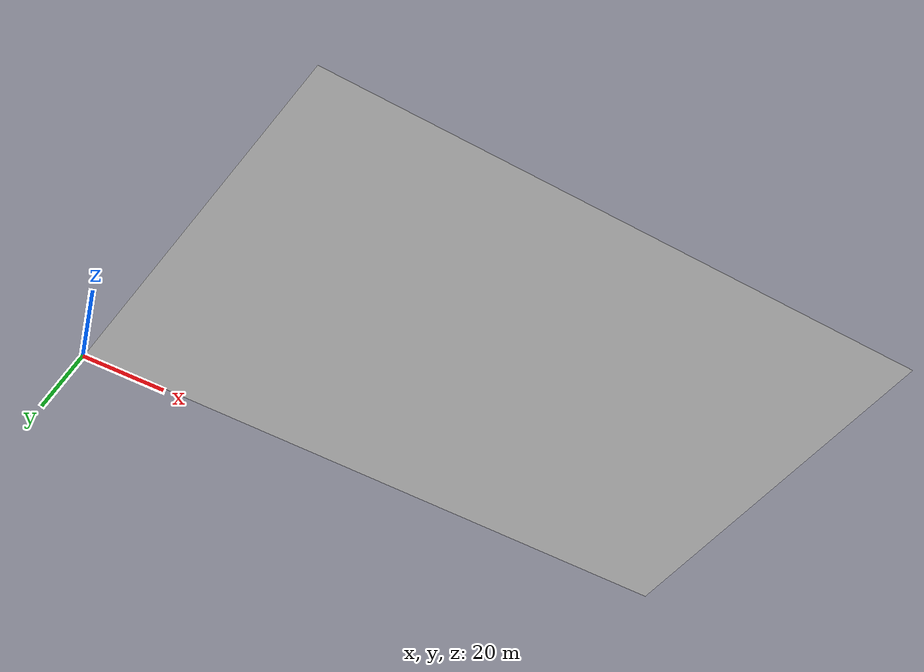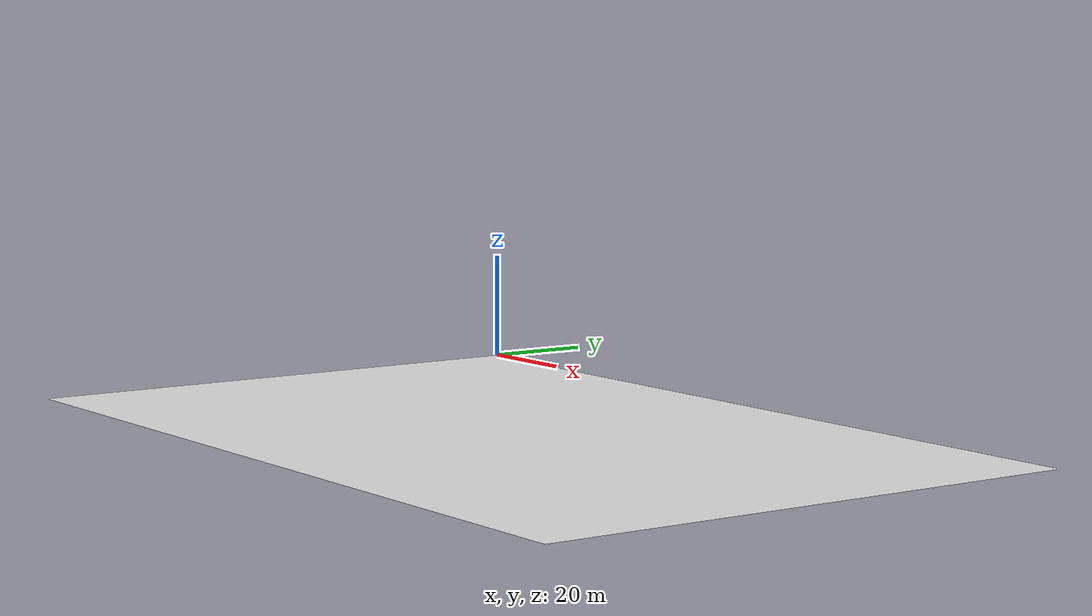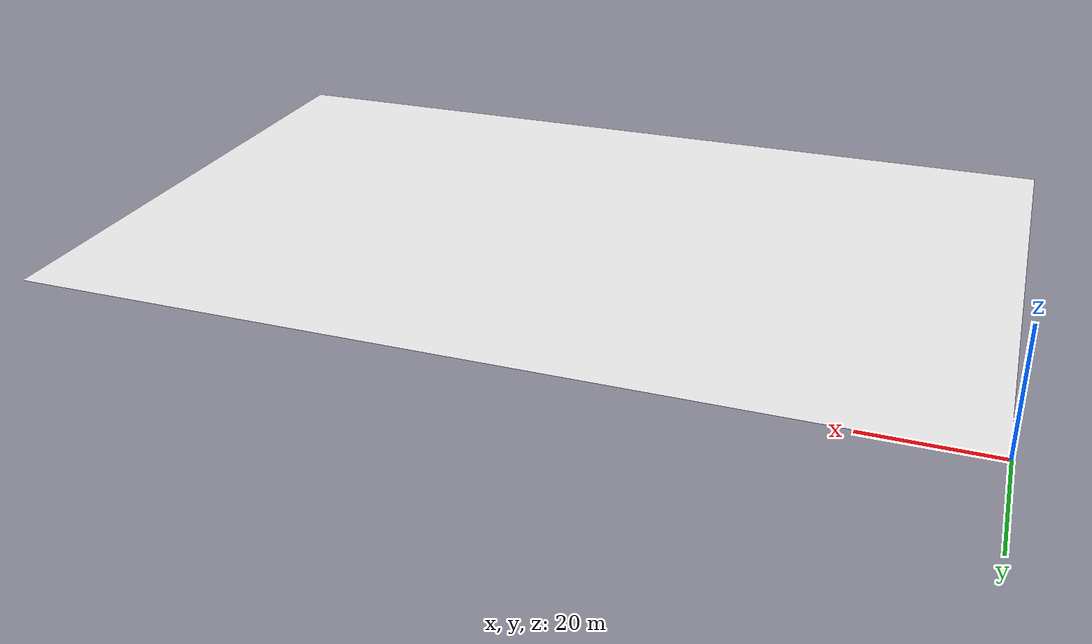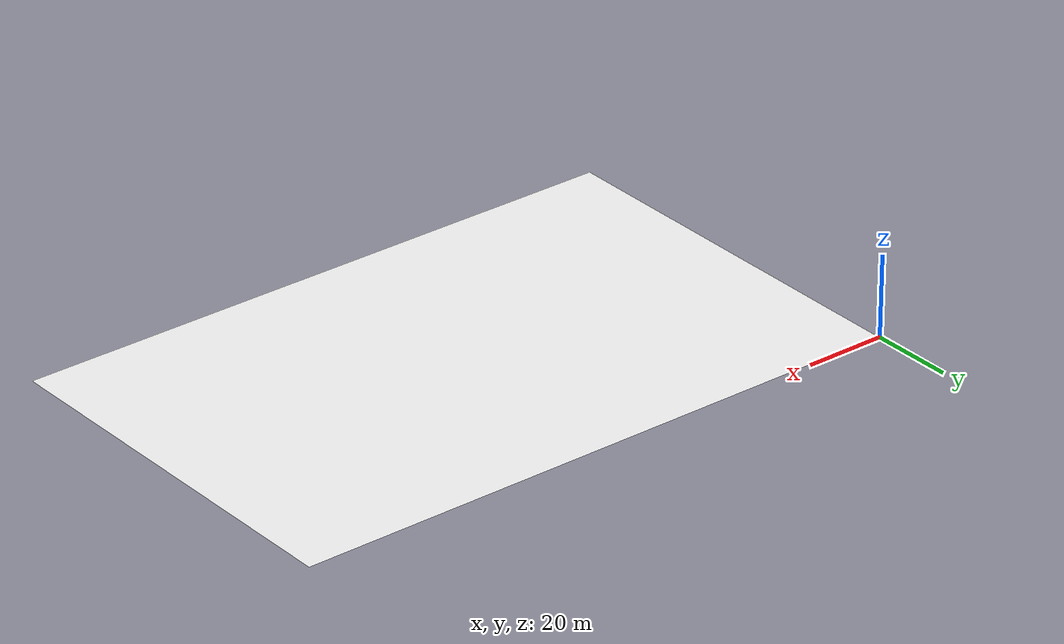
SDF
<?xml version='1.0' encoding='utf-8'?>
<sdf version="1.7">
  <model name="first_project_L2">
    <static>true</static>
    <link name="floor_1">
      <visual name="visual">
        <geometry>
          <mesh>
            <uri>model://first_project_L2/meshes/floor_1.obj</uri>
          </mesh>
        </geometry>
        <material>
          <diffuse>1.0 1.0 1.0</diffuse>
          <specular>0.1 0.1 0.1</specular>
          <pbr>
            <metal>
              <metalness>0.0</metalness>
              <albedo_map>model://first_project_L2/meshes/blue_linoleum.png</albedo_map>
            </metal>
          </pbr>
          <script>
            <uri>model://first_project_L2/meshes/</uri>
            <name>floor_1_Diffuse</name>
          </script>
        </material>
      </visual>
      <collision name="collision">
        <geometry>
          <mesh>
            <uri>model://first_project_L2/meshes/floor_1.obj</uri>
          </mesh>
        </geometry>
        <surface>
          <contact>
            <collide_bitmask>0x01</collide_bitmask>
          </contact>
        </surface>
      </collision>
    </link>
  </model>
</sdf>
